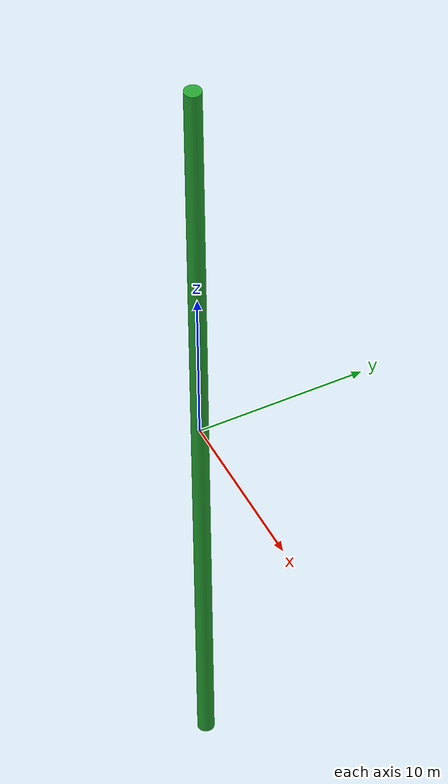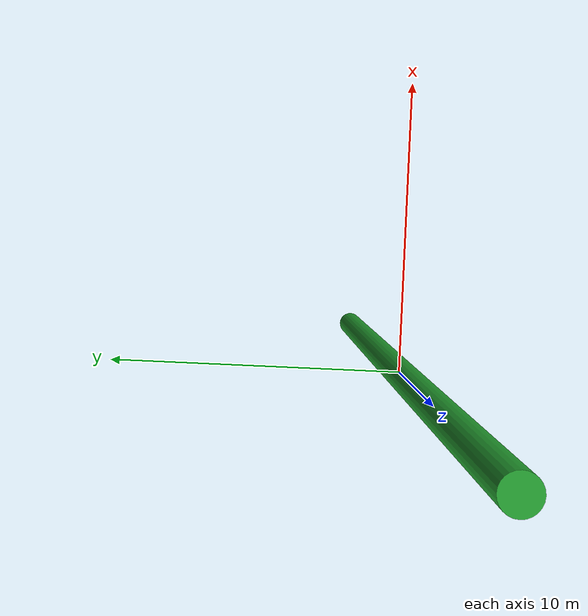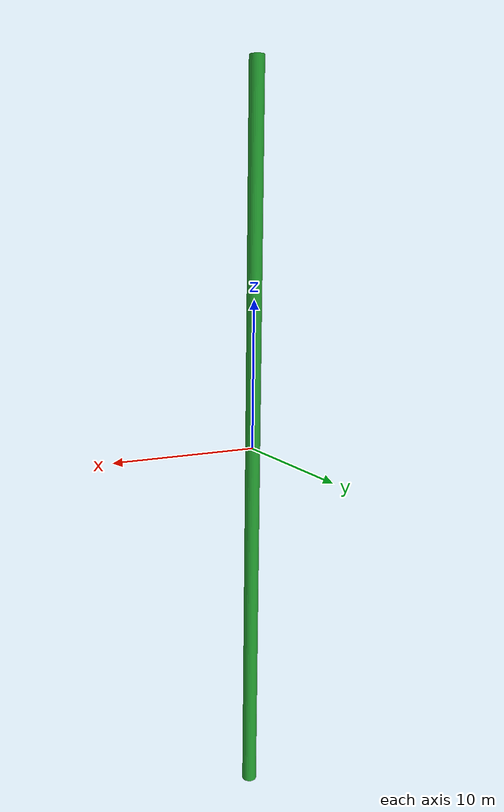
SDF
<?xml version="1.0" ?>
<sdf version="1.5">
  <model name="Target">
    <static>true</static>
    <link name="green">
      <pose>0 0 0 0 0 0</pose>
      <visual name="visual">
        <geometry>
          <cylinder>
              <radius>0.5</radius>
              <length>50</length>
          </cylinder>
        </geometry>
        <material>
          <script>
            <uri>file://media/materials/scripts/gazebo.material</uri>
            <name>Gazebo/Green</name>
          </script>
          <ambient>1 1 1 0.5</ambient>
        </material>
        <cast_shadows>0</cast_shadows>
        <transparency>0</transparency>
      </visual>
    </link>

  </model>
</sdf>
